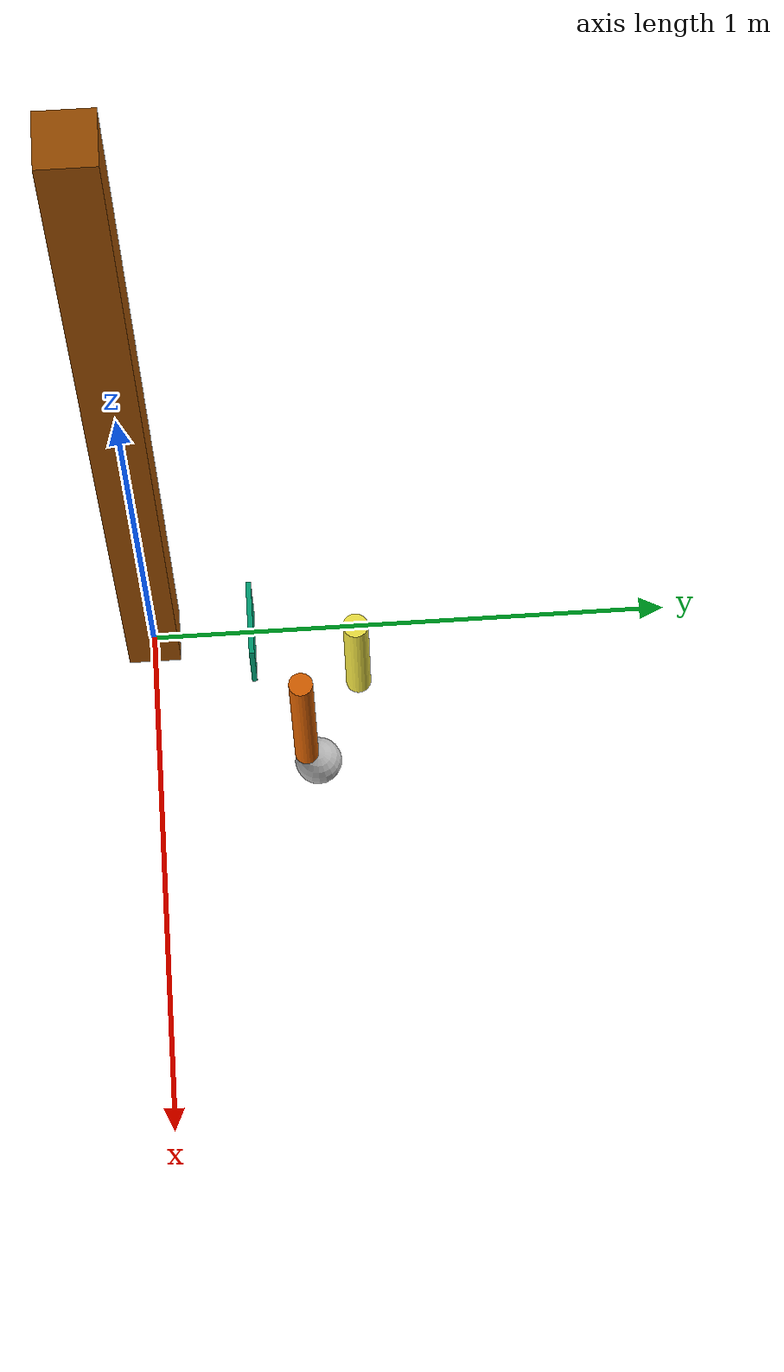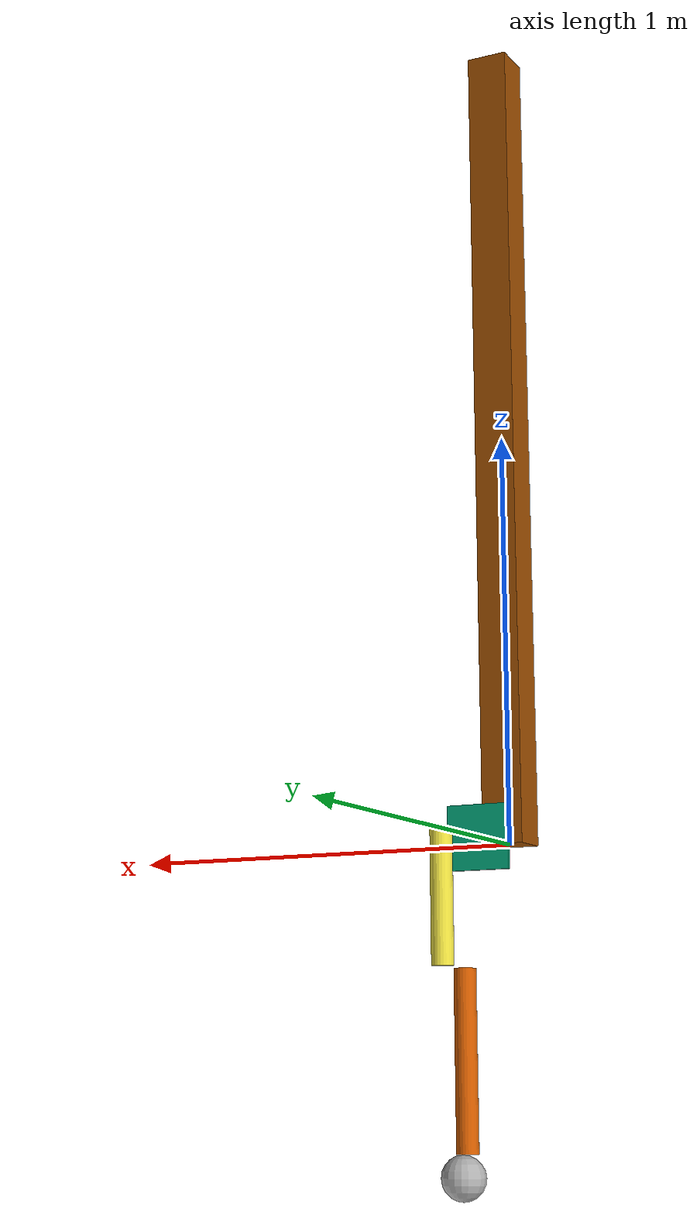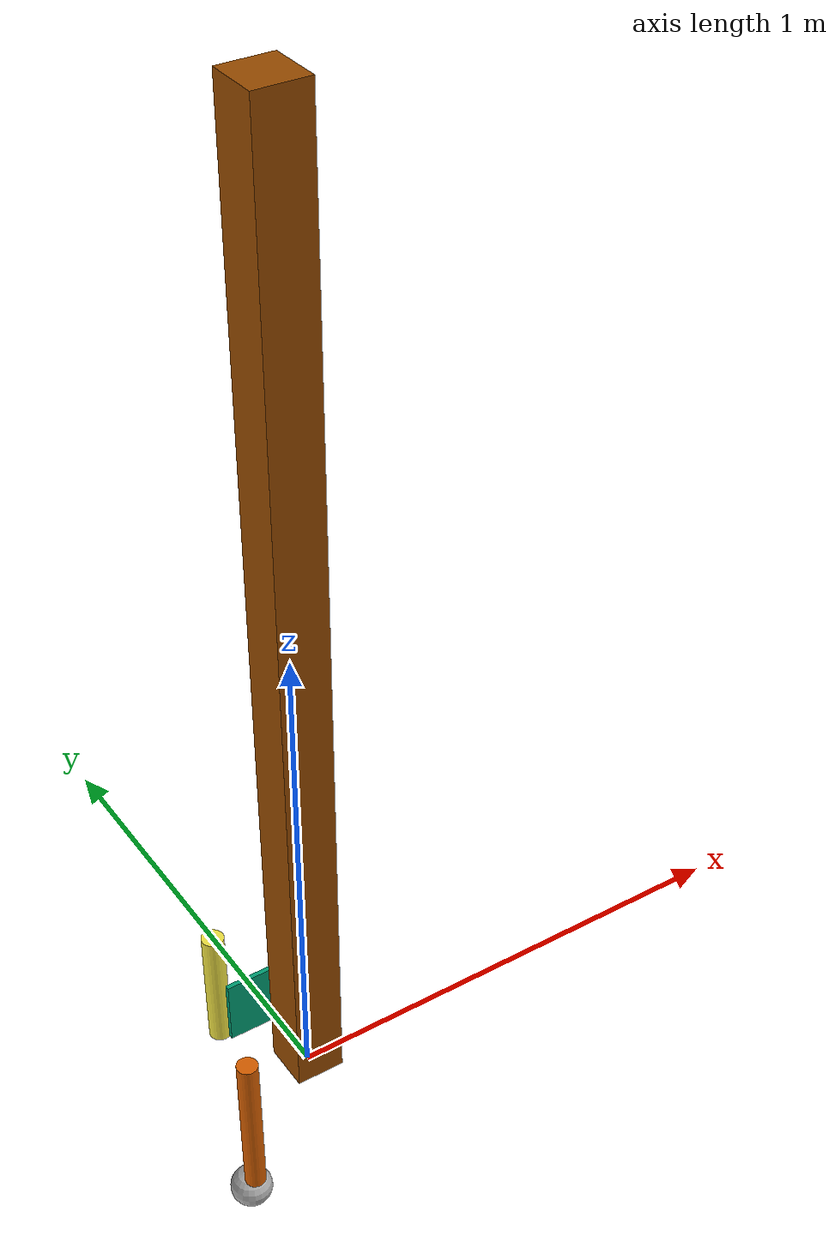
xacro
<?xml version="1.0"?>

<robot name="protoleg" xmlns:xacro="http://www.ros.org/wiki/xacro">

	<xacro:arg name="hip_y_offset" default="0.3" />

	<xacro:arg name="thigh_width" default="0.05" />
	<xacro:arg name="thigh_height" default="0.3" />
	<xacro:arg name="thigh_mass" default="3.3712777" />
	<xacro:arg name="thigh_color" default="1 0.5088 0.0468 1" />

	<xacro:arg name="knee_y_offset" default="-0.1182" />

	<xacro:arg name="shin_width" default="0.05" />
	<xacro:arg name="shin_height" default="0.451" />
	<xacro:arg name="shin_mass" default="1.3106594" />
	<xacro:arg name="shin_color" default="1 0.5088 0.0468 1" />

	<xacro:arg name="rail_color" default="1 1 1 1" />
	<xacro:arg name="rail_width" default="0.08" />
	<xacro:arg name="rail_length" default="0.1" />
	<xacro:arg name="rail_height" default="2" />
	<xacro:arg name="rail_mass" default="1000" />

	<xacro:arg name="slider_width" default="0.15" />
	<xacro:arg name="slider_length" default="0.01" />
	<xacro:arg name="slider_height" default="0.15" />
	<xacro:arg name="slider_y_offset" default="0.01" />
	<xacro:arg name="slider_mass" default="8" />

	<xacro:arg name="hip_friction" default="0.1" />
	<xacro:arg name="rail_friction" default="0.0" />
	<xacro:arg name="knee_friction" default="0.1" />

	<xacro:arg name="rail_x" default="0.0" />
	<xacro:arg name="rail_y" default="0.0" />
	<xacro:arg name="rail_z" default="0.0" />
	<xacro:arg name="rail_roll" default="0.0" />
	<xacro:arg name="rail_pitch" default="0.0" />
	<xacro:arg name="rail_yaw" default="0.0" />

	<xacro:property name="hip_y_offset"  default="$(arg hip_y_offset)" />

	<xacro:property name="thigh_width"  default="$(arg thigh_width)" />
	<xacro:property name="thigh_height" default="$(arg thigh_height)" />
	<xacro:property name="thigh_mass"   default="$(arg thigh_mass)" />
	<xacro:property name="thigh_color"  default="$(arg thigh_color)" />

	<xacro:property name="knee_y_offset"  default="$(arg knee_y_offset)" />

	<xacro:property name="shin_width"  default="$(arg shin_width)" />
	<xacro:property name="shin_height" default="$(arg shin_height)" />
	<xacro:property name="shin_mass"   default="$(arg shin_mass)" />
	<xacro:property name="shin_color"  default="$(arg shin_color)" />

	<xacro:property name="rail_color" default="$(arg rail_color)" />
	<xacro:property name="rail_width" default="$(arg rail_width)" />
	<xacro:property name="rail_length" default="$(arg rail_length)" />
	<xacro:property name="rail_height" default="$(arg rail_height)" />
	<xacro:property name="rail_mass" default="$(arg rail_mass)" />

	<xacro:property name="slider_width" default="$(arg slider_width)" />
	<xacro:property name="slider_length" default="$(arg slider_length)" />
	<xacro:property name="slider_height" default="$(arg slider_height)" />
	<xacro:property name="slider_mass" default="$(arg slider_mass)" />
	<xacro:property name="slider_y_offset" default="$(arg slider_y_offset)" />

	<xacro:property name="knee_friction" default="$(arg knee_friction)" />
	<xacro:property name="hip_friction" default="$(arg hip_friction)" />
	<xacro:property name="rail_friction" default="$(arg rail_friction)" />
	<xacro:property name="rail_x" default="$(arg rail_x)" />
	<xacro:property name="rail_y" default="$(arg rail_y)" />
	<xacro:property name="rail_z" default="$(arg rail_z)" />
	<xacro:property name="rail_roll" default="$(arg rail_roll)" />
	<xacro:property name="rail_pitch" default="$(arg rail_pitch)" />
	<xacro:property name="rail_yaw" default="$(arg rail_yaw)" />
	<xacro:property name="id" default="1" />

    <xacro:property name="femur_com_xyz" value="${-1.7807105e-02 * mmTom} ${-3.4271947e+01 * mmTom} ${-2.2282064e+02 * mmTom}" />
    <xacro:property name="femur_com_rpy" value="0 0 0" />
    <xacro:property name="shin_com_xyz" value="${9.2284672e-04 * mmTom} ${1.759883e+01 * mmTom} ${-1.8730054e+02 * mmTom}" />
    <xacro:property name="shin_com_rpy" value="0 0 0" />

	<xacro:macro name="box_inertial" params="mass x y z pose_xyz pose_rpy">
		<inertial>
			<origin xyz="${pose_xyz}" rpy="${pose_rpy}"/>
			<mass value="${mass}" />
			<inertia ixx="${0.083 * mass * (y*y + z*z)}" ixy="0.0" ixz="0.0" iyy="${0.083 * mass * (x*x + z*z)}" iyz="0.0" izz="${0.083 * mass * (x*x + y*y)}"/>
		</inertial>
	</xacro:macro>
    <xacro:macro name="small_inertial" params="">
		<xacro:box_inertial mass="0.0001"
                            x="0.001" y="0.001" z="0.001"
                            pose_xyz = "0 0 0"
                            pose_rpy = "0 0 0"/>
    </xacro:macro>

    <!-- scale -->
    <xacro:property name="mmTom" value="0.001" />
    <xacro:property name="dmTom" value="0.1" />
    <xacro:property name="mm2Tom2" value="${0.001*0.001}" />
    <xacro:property name="tonsToKg" value="1000.0" />
    <xacro:property name="kgmm2_2_kgm2" value="${1e-06}" />

    <xacro:property name="PI" value="3.14159265359" />
    <xacro:property name="PI_2" value="1.57079632679" />
    <xacro:property name="PI_4" value="0.7853981633974483" />
    <xacro:property name="DEG2RAD" value="${PI/180.0}" />

    <xacro:property name="sliding_guide_static_friction" value="0.0" />
    <xacro:property name="sliding_guide_dyn_friction" value="0.01" />

    <xacro:property name="payload_mass" value="${0.0}" />

    <xacro:property name="camera_height" value="0.5" />
    <xacro:property name="camera_depth" value="1.0" />

    <xacro:property name="fts_sphere_radius" value="0.05" />
    <xacro:property name="fts_delta" value="0.000" />
    <xacro:property name="aux_mass_tip" value="0.01" />

    <!-- color -->
    <material name="darkblue">
        <color rgba="0.0 0.3 0.9 1"/>
    </material>

    <material name="dark">
        <color rgba="0.6 0.6 0.6 1"/>
    </material>

    <material name="sky_blue">
            <color rgba="0.13 0.44 0.70 1"/>
    </material>
    <material name="grey">
        <color rgba=" 0.6 0.6 0.6 1"/>
    </material>
    <material name="black">
        <color rgba="0.4 0.4 0.4 1"/>
    </material>
    <material name="brown">
        <color rgba="0.59 0.29 0.0 1"/>
    </material>

    <xacro:macro name="fake_inertial">
        <inertial>
            <mass value="0.1"/>
            <inertia ixx="0.0001" ixy="0" ixz="0" iyy="0.0001" iyz="0" izz="0.0001"/>
            <origin xyz="0 0 0"/>
        </inertial>
    </xacro:macro>

    <xacro:property name="test_rig_thickness" value="0.1" />
    <xacro:property name="test_rig_height" value="2.0" />
    <xacro:property name="hip_mounting_offset" value="0.08" />

    <link name="world" />

    <joint name="world_test_rig" type="fixed">
        <parent link="world" />
        <child link="test_rig" />
        <origin xyz="0 0 ${test_rig_height/2}" />
    </joint>

    <link name="test_rig">

        <visual>
            <origin rpy="0 0 0" xyz="0 0 0" />
            <geometry>
                <box size="${test_rig_thickness} ${test_rig_thickness} ${test_rig_height}" />
            </geometry>
            <material name="brown"/>
        </visual>

        <inertial>
            <mass value="1000.0" />
            <inertia ixx="0.01" iyy="0.01" izz="0.01" ixy="0.0" ixz="0.0" iyz="0.0" />
        </inertial>

    </link>

    <link name="body">
		<visual name = "slider_link_v">
			<origin xyz="0 ${slider_y_offset} 0" rpy="0 0 0"/>
			<geometry>
				<box size="${slider_width} ${slider_length} ${slider_height}"/>
			</geometry>
	   	</visual>
  		<collision name = "slider_link_c">
			<origin xyz="0 ${slider_y_offset} 0" rpy="0 0 0"/>
			<geometry>
				<box size="${slider_width} ${slider_length} ${slider_height}"/>
			</geometry>
	   	</collision>
        <inertial>
            <origin rpy="${0 * DEG2RAD} ${0 * DEG2RAD} ${0 * DEG2RAD}" xyz="${-6.0548104e-03 * mmTom} ${8.2902397e+01 * mmTom} ${6.0505209e+01 * mmTom}"/>
            <mass value="${7.3800519 + payload_mass}" />
            <inertia ixx="${4.4624842e+04 * kgmm2_2_kgm2}" iyy="${2.6977590e+04 * kgmm2_2_kgm2}" izz="${2.7956754e+04 * kgmm2_2_kgm2}"
                    ixy="${-1.4644878e+01 * kgmm2_2_kgm2}" ixz="${3.0225947e+01 * kgmm2_2_kgm2}" iyz="${9.6636358e+03 * kgmm2_2_kgm2}" />
        </inertial>
    </link>
    <joint name="rail_joint" type="prismatic">
        <parent link="test_rig" />
        <child link="body" />
        <origin xyz="0 ${test_rig_thickness + hip_mounting_offset} -${test_rig_height/2}" rpy="0.0 0.0 0.0"/>
        <axis xyz="0 0 1" />
        <dynamics damping="${sliding_guide_dyn_friction}" friction="${sliding_guide_static_friction}" />
        <limit lower="0" upper="10.0" effort="1000" velocity="50.0"/>
    </joint>

    <joint name="hip_pitch_${id}" type="revolute">
        <parent link="body" />
        <child link="femur${id}" />
        <axis xyz="0 1 0"/>
        <origin xyz="0 ${214.6 * mmTom} 0" />
        <limit effort="112" lower="-2.4" upper="2.4" velocity="20.0"/>
    </joint>

    <link name="femur${id}">

		<visual name = "thigh_link_v">
			<origin xyz="0 0 -${thigh_height/2}" rpy="0 0 0"/>
			<geometry>
                <cylinder length="${thigh_height}" radius="${thigh_width/2}" />
			</geometry>
	   	</visual>
		<collision name = "thigh_link_c">
			<origin xyz="0 0 -${thigh_height/2}" rpy="0 0 0"/>
			<geometry>
                <cylinder length="${thigh_height}" radius="${thigh_width/2}" />
			</geometry>
	   	</collision>

        <inertial>
            <origin rpy="${femur_com_rpy}" xyz="${femur_com_xyz}"/>
            <mass value="3.3712777"/>
            <inertia ixx="${4.6647423e+04 * kgmm2_2_kgm2}" iyy="${4.3720135e+04 * kgmm2_2_kgm2}" izz="${7.5794813e+04 * kgmm2_2_kgm2}"
                ixy="${-1.2697640e+01 * kgmm2_2_kgm2}" ixz="${-3.2745810e+01 * kgmm2_2_kgm2}" iyz="${-6.3299091e+04 * kgmm2_2_kgm2}" />
        </inertial>
    </link>
    <joint name="femur${id}_com_joint" type="fixed">
        <origin rpy="${femur_com_rpy}" xyz="${femur_com_xyz}"/>
        <parent link="femur${id}"/>
        <child link="femur${id}_com"/>
    </joint>
    <link name="femur${id}_com">
        <xacro:small_inertial />
    </link>

    <joint name="knee_pitch_${id}" type="revolute">
        <parent link="femur${id}"/>
        <child link="shin${id}"/>
        <origin rpy="0.0 0.0 0.0" xyz="0.0 ${-118.2 * mmTom} ${-300.0 * mmTom}"/>
        <axis xyz="0 -1 0"/>
        <limit effort="112" lower="-2.4" upper="2.4" velocity="20.0"/>
    </joint>

    <link name="shin${id}">
        <visual name = "shin_link_v">
			<origin xyz="0 0 -${(shin_height-shin_width)/2}" rpy="0 0 0"/>
			<geometry>
                <cylinder length="${shin_height-shin_width}" radius="${shin_width/2}" />
			</geometry>
	   	</visual>
		<collision name = "shin_link_c">
			<origin xyz="0 0 -${(shin_height-shin_width)/2}" rpy="0 0 0"/>
			<geometry>
                <cylinder length="${shin_height-shin_width}" radius="${shin_width/2}" />
			</geometry>
		</collision>
        <inertial>
            <origin rpy="${shin_com_rpy}" xyz="${shin_com_xyz}"/>
            <mass value="1.3106594"/>
            <inertia ixx="${4.0133965e+04 * kgmm2_2_kgm2}" iyy="${4.0269285e+04 * kgmm2_2_kgm2}" izz="${1.5274496e+03 * kgmm2_2_kgm2}"
                ixy="${4.6219082e-02 * kgmm2_2_kgm2}" ixz="${-3.0432320e-01 * kgmm2_2_kgm2}" iyz="${1.3816329e+03 * kgmm2_2_kgm2}" />
        </inertial>
    </link>
    <joint name="shin${id}_com_joint" type="fixed">
        <origin rpy="${shin_com_rpy}" xyz="${shin_com_xyz}"/>
        <parent link="shin${id}"/>
        <child link="shin${id}_com"/>
    </joint>
    <link name="shin${id}_com">
        <xacro:small_inertial/>
    </link>

    <link name="tip${id}"><visual>
			<origin xyz="0 0 0" rpy="0 0 0"/>
            <geometry>
                <sphere radius="${shin_width}" />
            </geometry>
        </visual>
        <collision>
			<origin xyz="0 0 0" rpy="0 0 0"/>
            <geometry>
                <sphere radius="${shin_width}" />
            </geometry>
        </collision>
		<xacro:small_inertial />
		<contact>
            <lateral_friction value="0.9"/>
            <rolling_friction value="0.01"/>
            <restitution value="0.05"/>
        </contact>
        <xacro:small_inertial />
    </link>
    <joint name="tip_joint_${id}" type="fixed">
        <parent link="shin${id}"/>
        <child link="tip${id}"/>
        <origin xyz="0.0 ${23.3000 * mmTom} ${-451 * mmTom}"/>
    </joint>

</robot>
